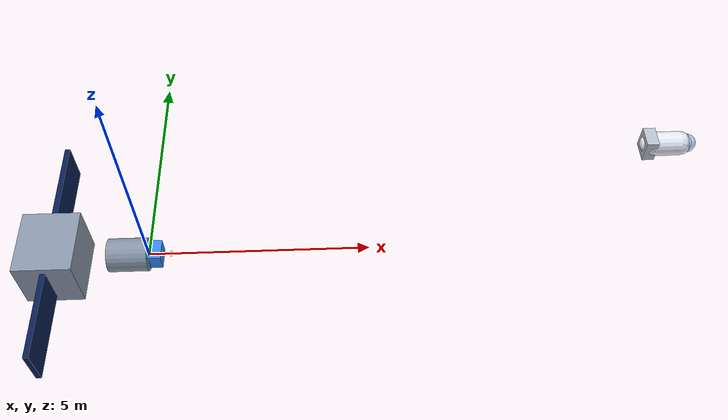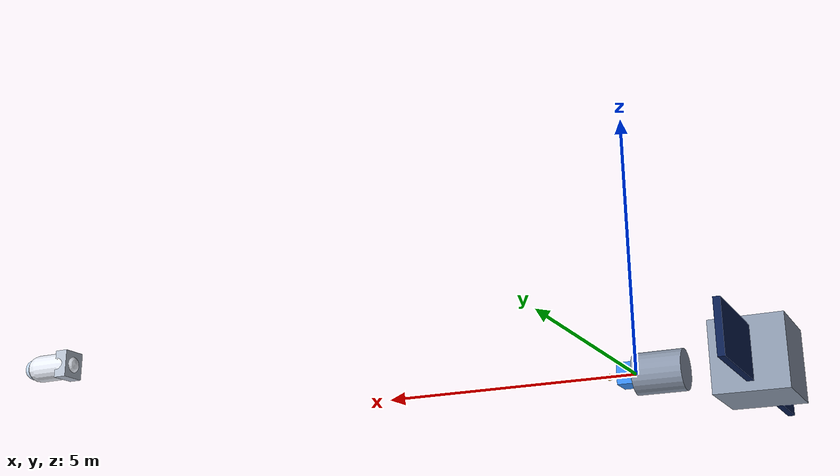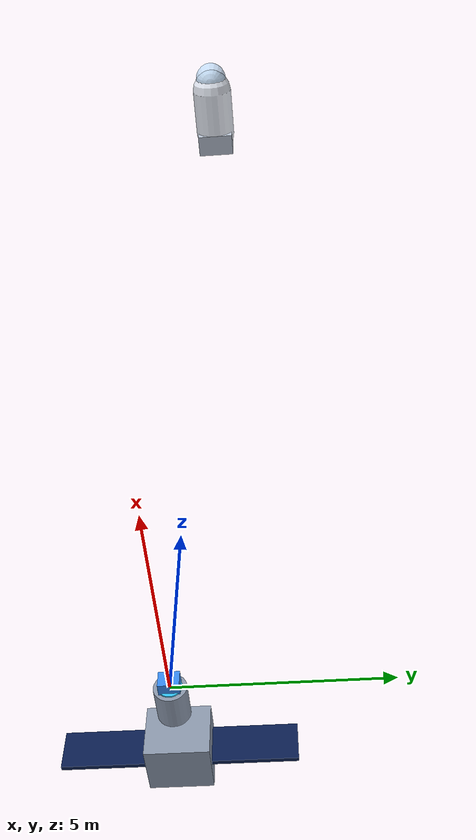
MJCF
<mujoco model="astronaut_rescue">
  <compiler angle="radian"/>
  <option timestep="0.01" gravity="0 0 0" integrator="implicitfast">
    <flag contact="disable"/>
  </option>

  <visual>
    <global azimuth="135" elevation="-22"/>
    <headlight ambient="0.25 0.25 0.3" diffuse="0.8 0.8 0.8" specular="0.3 0.3 0.3"/>
    <rgba haze="0.015 0.02 0.05 1"/>
  </visual>

  <asset>
    <texture type="skybox" builtin="gradient" rgb1="0.015 0.025 0.07"
             rgb2="0 0 0" width="512" height="3072"/>
    <material name="spacecraft_metal" rgba="0.55 0.60 0.68 1" shininess="0.6"/>
    <material name="solar_panel" rgba="0.04 0.12 0.32 1" shininess="0.9"/>
  </asset>

  <default>
    <geom contype="0" conaffinity="0"/>
  </default>

  <worldbody>
    <!-- The spacecraft is the mjorbit chief.  The port is a non-dynamic marker
         at the local-world origin. -->
    <light name="sun" pos="3 -6 8" dir="-0.2 0.4 -1" directional="true"/>
    <body name="spacecraft" pos="-1.5 0 0">
      <geom name="spacecraft_bus" type="box" pos="-0.65 0 0"
            size="0.65 0.75 0.65" material="spacecraft_metal"/>
      <geom name="left_solar_panel" type="box" pos="-0.65 1.75 0"
            size="0.06 1.0 0.48" material="solar_panel"/>
      <geom name="right_solar_panel" type="box" pos="-0.65 -1.75 0"
            size="0.06 1.0 0.48" material="solar_panel"/>
      <geom name="docking_tunnel" type="cylinder" pos="1.05 0 0"
            size="0.38 0.45" quat="0.7071068 0 0.7071068 0"
            material="spacecraft_metal"/>
      <site name="spacecraft_port" pos="1.5 0 0" type="cylinder"
            size="0.28 0.035" quat="0.7071068 0 0.7071068 0"
            rgba="0.2 0.8 1 1"/>
    </body>

    <body name="rescuer" pos="0 0 0">
      <freejoint name="rescuer_free"/>
      <geom name="rescuer_body" type="box" size="0.30 0.24 0.20" mass="40"
            rgba="0.22 0.55 0.95 1"/>
      <geom name="capture_boom" type="capsule" fromto="0.30 0 0 0.48 0 0"
            size="0.035" mass="1" rgba="0.95 0.75 0.15 1"/>
      <site name="capture_probe" pos="0.50 0 0" size="0.06" rgba="1 0.8 0.1 1"/>
      <site name="rescuer_imu" pos="0 0 0"/>
    </body>

    <body name="astronaut" pos="12 2 1">
      <freejoint name="astronaut_free"/>
      <geom name="suit_torso" type="capsule" fromto="-0.32 0 0 0.32 0 0"
            size="0.28" mass="140" rgba="0.92 0.94 0.98 1"/>
      <geom name="life_support" type="box" pos="-0.40 0 0" size="0.14 0.25 0.28"
            mass="35" rgba="0.72 0.76 0.82 1"/>
      <geom name="helmet" type="sphere" pos="0.48 0 0" size="0.22" mass="5"
            rgba="0.75 0.88 1 0.7"/>
      <site name="rescue_handle" pos="-0.50 0 0" size="0.06" rgba="1 0.35 0.15 1"/>
      <site name="astronaut_imu" pos="0 0 0"/>
    </body>
  </worldbody>

  <actuator>
    <!-- Translational motors act in chief-centered inertial world axes. -->
    <motor name="force_x" joint="rescuer_free" gear="1 0 0 0 0 0"
           ctrlrange="-5 5"/>
    <motor name="force_y" joint="rescuer_free" gear="0 1 0 0 0 0"
           ctrlrange="-5 5"/>
    <motor name="force_z" joint="rescuer_free" gear="0 0 1 0 0 0"
           ctrlrange="-5 5"/>
    <!-- Rotational free-joint motor axes are body-frame axes. -->
    <motor name="torque_x" joint="rescuer_free" gear="0 0 0 1 0 0"
           ctrlrange="-0.5 0.5"/>
    <motor name="torque_y" joint="rescuer_free" gear="0 0 0 0 1 0"
           ctrlrange="-0.5 0.5"/>
    <motor name="torque_z" joint="rescuer_free" gear="0 0 0 0 0 1"
           ctrlrange="-0.5 0.5"/>
  </actuator>

  <equality>
    <weld name="capture_weld" body1="rescuer" body2="astronaut"
          relpose="1 0 0 1 0 0 0" active="false" solref="0.25 1"/>
  </equality>

  <sensor>
    <framepos name="rescue_position_world_m" objtype="body" objname="rescuer"
              noise="0.002"/>
    <framelinvel name="rescue_velocity_world_m_s" objtype="body" objname="rescuer"
                 noise="0.0005"/>
    <framequat name="rescue_attitude_wxyz" objtype="body" objname="rescuer"
               noise="0.0002"/>
    <gyro name="rescue_angular_velocity_body_rad_s" site="rescuer_imu"
          noise="0.0002"/>

    <framepos name="astronaut_position_world_m" objtype="body" objname="astronaut"
              noise="0.002"/>
    <framelinvel name="astronaut_velocity_world_m_s" objtype="body" objname="astronaut"
                 noise="0.0005"/>
    <framequat name="astronaut_attitude_wxyz" objtype="body" objname="astronaut"
               noise="0.0002"/>
    <gyro name="astronaut_angular_velocity_body_rad_s" site="astronaut_imu"
          noise="0.0002"/>

    <framepos name="capture_probe_position_world_m" objtype="site"
              objname="capture_probe" noise="0.002"/>
    <framepos name="rescue_handle_position_world_m" objtype="site"
              objname="rescue_handle" noise="0.002"/>
    <framepos name="spacecraft_port_position_world_m" objtype="site"
              objname="spacecraft_port" noise="0.001"/>
  </sensor>

  <mjorbit use_j2="false" use_drag="false" use_srp="false" use_magnetic="false"
           use_gravity_gradient="true"/>
</mujoco>
